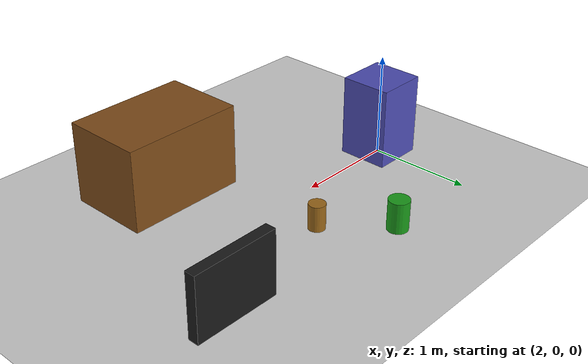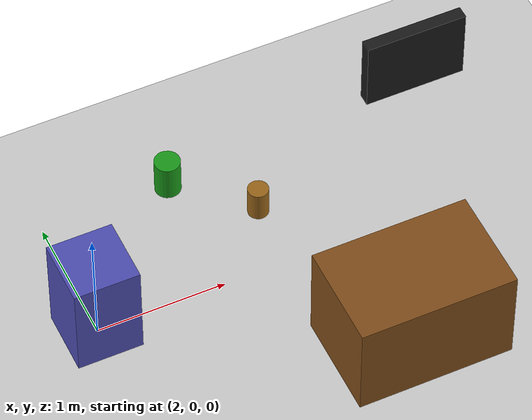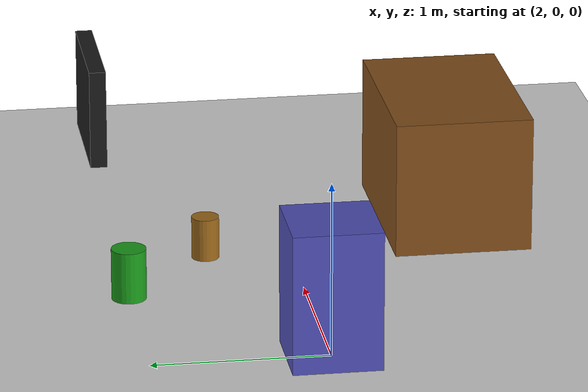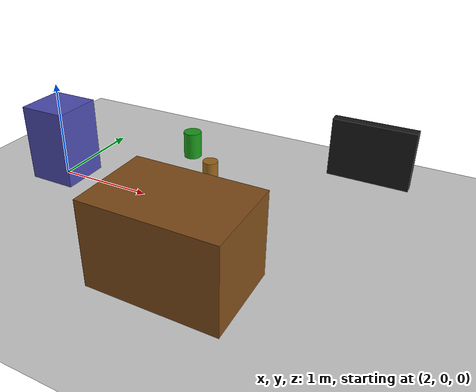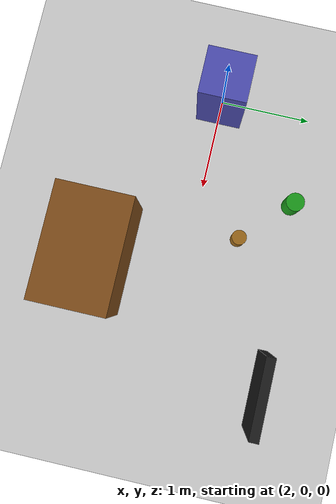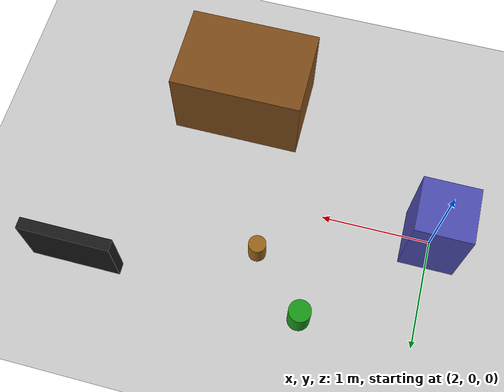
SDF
<?xml version="1.0"?>
<sdf version="1.6">
  <world name="simple_test">
    <include><uri>model://sun</uri></include>
    <include><uri>model://ground_plane</uri></include>

    <scene><shadows>false</shadows></scene>

    <physics type="ode">
      <real_time_update_rate>1000.0</real_time_update_rate>
      <max_step_size>0.001</max_step_size>
      <real_time_factor>1</real_time_factor>
      <ode>
        <solver><type>quick</type><iters>150</iters><sor>1.4</sor>
        <use_dynamic_moi_rescaling>1</use_dynamic_moi_rescaling></solver>
        <constraints><cfm>0.00001</cfm><erp>0.2</erp>
        <contact_max_correcting_vel>2000.0</contact_max_correcting_vel>
        <contact_surface_layer>0.01</contact_surface_layer></constraints>
      </ode>
    </physics>

    <!-- 椅子 (蓝色方块，Faster R-CNN 可能识别为 chair) -->
    <model name="chair1"><static>true</static><pose>2 0 0.4 0 0 0</pose>
      <link name="link">
        <collision name="coll"><geometry><box><size>0.5 0.5 0.8</size></box></geometry></collision>
        <visual name="vis"><geometry><box><size>0.5 0.5 0.8</size></box></geometry>
          <material><ambient>0.2 0.2 0.8 1</ambient><diffuse>0.3 0.3 0.7 1</diffuse></material>
        </visual>
      </link>
    </model>

    <!-- 瓶子/罐子 (绿色圆柱) -->
    <model name="bottle1"><static>true</static><pose>3 1 0.15 0 0 0</pose>
      <link name="link">
        <collision name="coll"><geometry><cylinder><radius>0.1</radius><length>0.3</length></cylinder></geometry></collision>
        <visual name="vis"><geometry><cylinder><radius>0.1</radius><length>0.3</length></cylinder></geometry>
          <material><ambient>0.2 0.7 0.2 1</ambient><diffuse>0.1 0.6 0.1 1</diffuse></material>
        </visual>
      </link>
    </model>

    <!-- 第二个瓶子 -->
    <model name="bottle2"><static>true</static><pose>3.5 0.5 0.15 0 0 0</pose>
      <link name="link">
        <collision name="coll"><geometry><cylinder><radius>0.08</radius><length>0.25</length></cylinder></geometry></collision>
        <visual name="vis"><geometry><cylinder><radius>0.08</radius><length>0.25</length></cylinder></geometry>
          <material><ambient>0.7 0.5 0.2 1</ambient><diffuse>0.6 0.4 0.1 1</diffuse></material>
        </visual>
      </link>
    </model>

    <!-- 桌子 (棕色大块) -->
    <model name="table1"><static>true</static><pose>4 -1 0.4 0 0 0</pose>
      <link name="link">
        <collision name="coll"><geometry><box><size>1.2 0.8 0.8</size></box></geometry></collision>
        <visual name="vis"><geometry><box><size>1.2 0.8 0.8</size></box></geometry>
          <material><ambient>0.5 0.3 0.1 1</ambient><diffuse>0.5 0.3 0.1 1</diffuse></material>
        </visual>
      </link>
    </model>

    <!-- 大箱子/TV (黑色) -->
    <model name="tv1"><static>true</static><pose>5 1 0.5 0 0 0</pose>
      <link name="link">
        <collision name="coll"><geometry><box><size>0.8 0.1 0.6</size></box></geometry></collision>
        <visual name="vis"><geometry><box><size>0.8 0.1 0.6</size></box></geometry>
          <material><ambient>0.1 0.1 0.1 1</ambient><diffuse>0.1 0.1 0.1 1</diffuse></material>
        </visual>
      </link>
    </model>

  </world>
</sdf>
